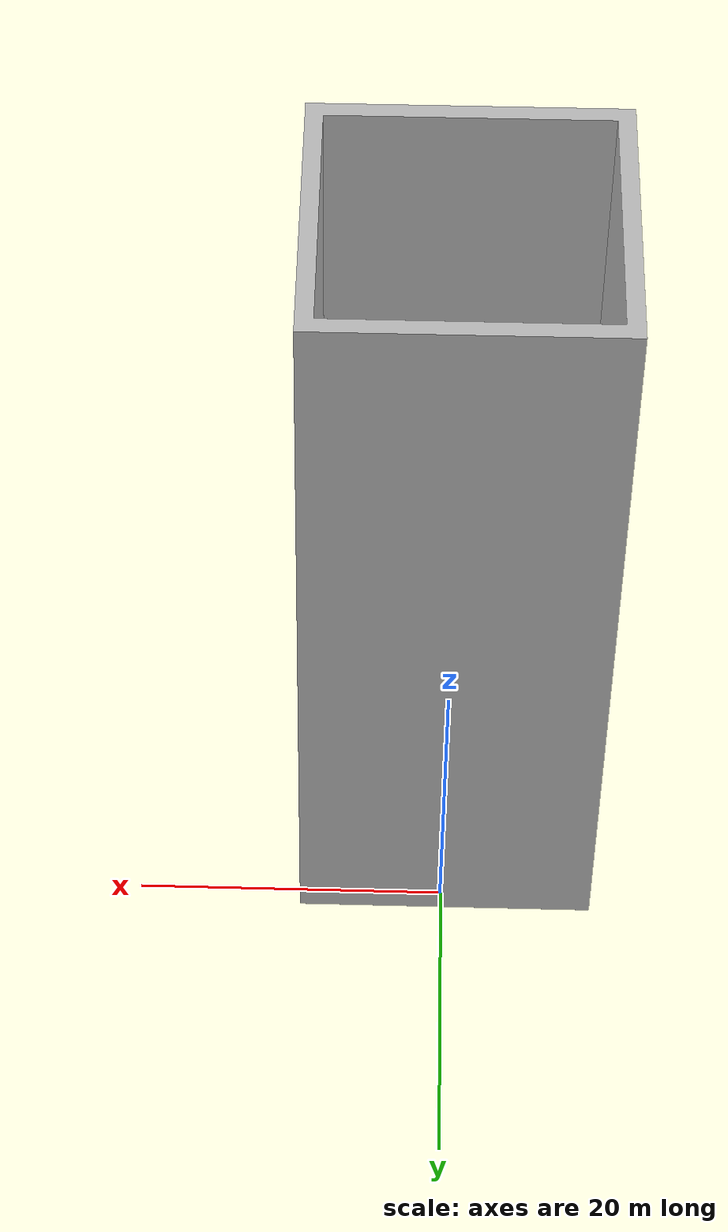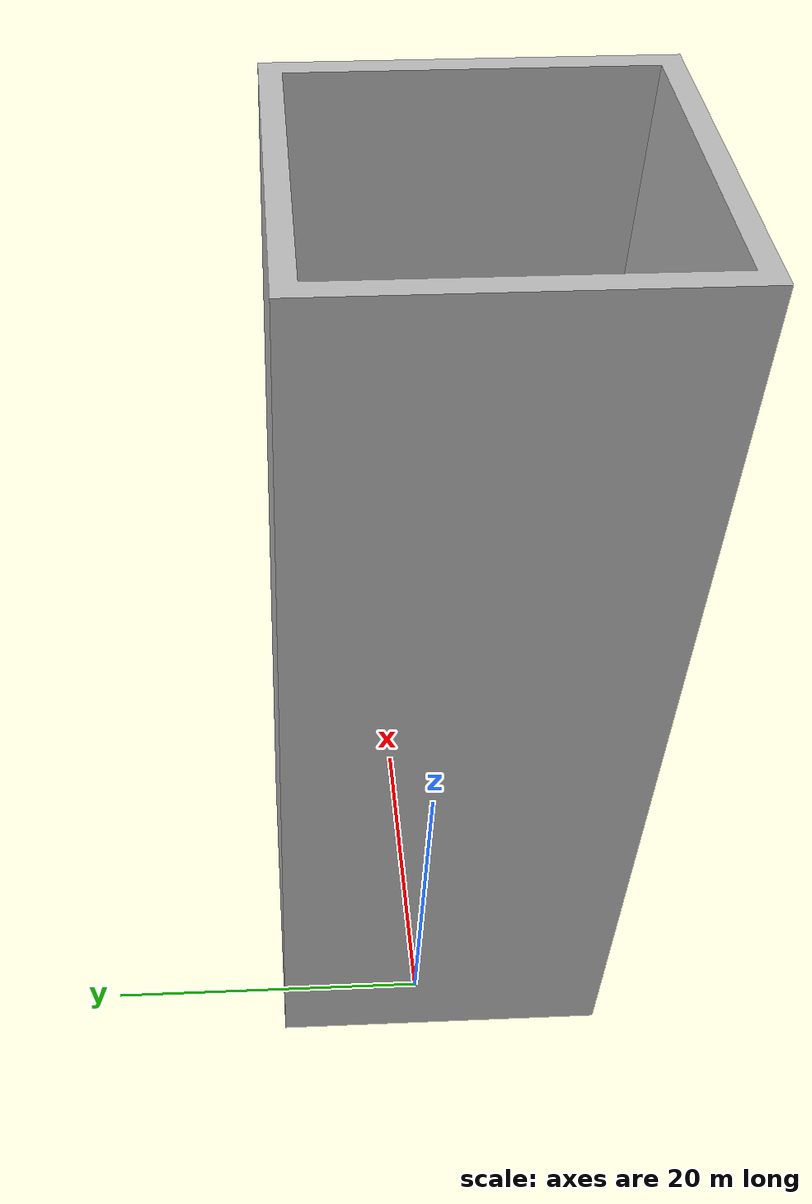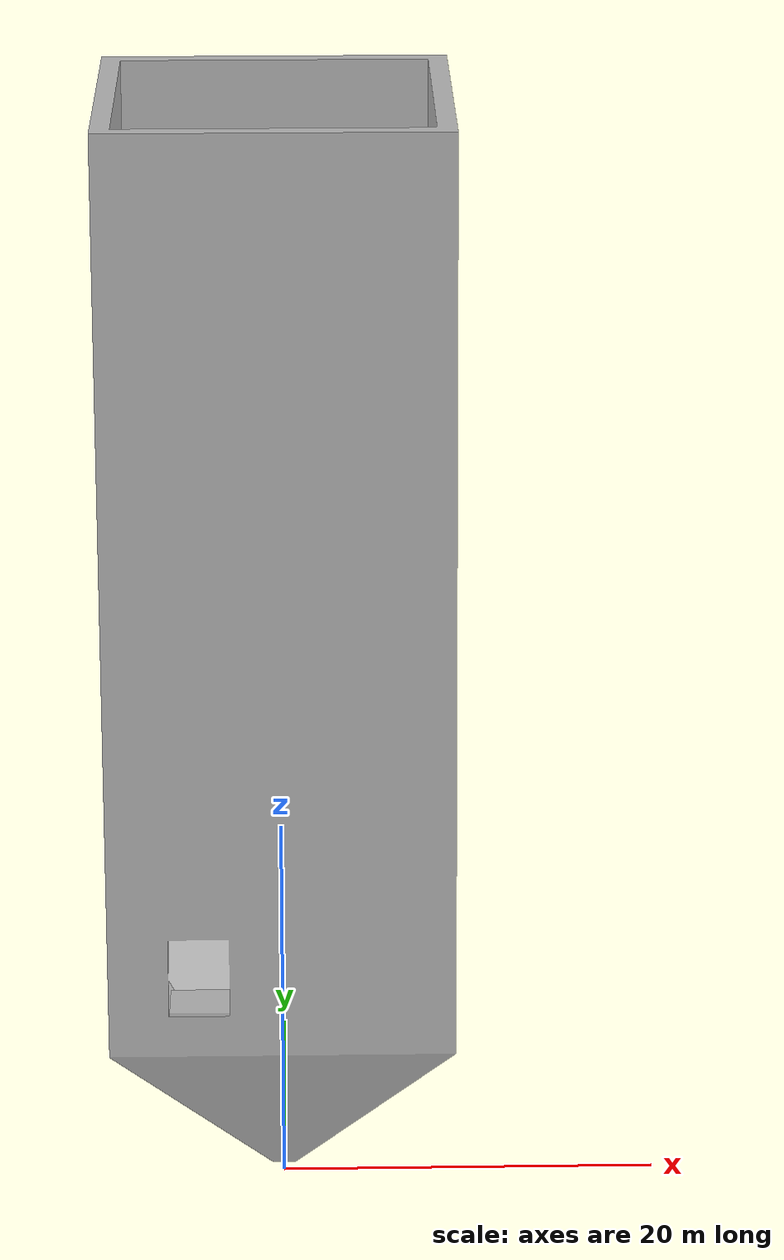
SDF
<?xml version='1.0'?>
<sdf version='1.5'>
  <model name='boiler'>
    <link name='link_1'>
      <pose>0 0 0.71103 0 -0 0</pose>
      <gravity>1</gravity>
      <self_collide>0</self_collide>
      <kinematic>0</kinematic>
      <inertial>
        <mass>1</mass>
        <pose>0 0 0 0 -0 0</pose>
        <inertia>
          <ixx>1</ixx>
          <ixy>0</ixy>
          <ixz>0</ixz>
          <iyy>1</iyy>
          <iyz>0</iyz>
          <izz>1</izz>
        </inertia>
      </inertial>
      <visual name='visual'>
        <pose>0 0 0 0 -0 0</pose>
        <geometry>
          <mesh>
            <uri>model://boiler/meshes/boiler_full.dae</uri>
            <scale>1 1 1</scale>
          </mesh>
        </geometry>
	<material>
          <shader type='pixel'>
            <normal_map>__default__</normal_map>
          </shader>
          <emissive>0.3 0.3 0.3 0</emissive>
        </material>
        <cast_shadows>1</cast_shadows>
        <transparency>0</transparency>
      </visual>
      <collision name='collision'>
        <laser_retro>0</laser_retro>
        <max_contacts>10</max_contacts>
        <pose>0 0 0 0 -0 0</pose>
        <geometry>
          <mesh>
            <uri>model://boiler/meshes/boiler_full.dae</uri>
            <scale>1 1 1</scale>
          </mesh>
        </geometry>
        <surface>
          <friction>
            <ode>
              <mu>1</mu>
              <mu2>1</mu2>
              <fdir1>0 0 0</fdir1>
              <slip1>0</slip1>
              <slip2>0</slip2>
            </ode>
          </friction>
          <bounce>
            <restitution_coefficient>0</restitution_coefficient>
            <threshold>1e+06</threshold>
          </bounce>
          <contact>
            <collide_without_contact>0</collide_without_contact>
            <collide_without_contact_bitmask>1</collide_without_contact_bitmask>
            <collide_bitmask>1</collide_bitmask>
            <ode>
              <soft_cfm>0</soft_cfm>
              <soft_erp>0.2</soft_erp>
              <kp>1e+13</kp>
              <kd>1</kd>
              <max_vel>0.01</max_vel>
              <min_depth>0</min_depth>
            </ode>
            <bullet>
              <split_impulse>1</split_impulse>
              <split_impulse_penetration_threshold>-0.01</split_impulse_penetration_threshold>
              <soft_cfm>0</soft_cfm>
              <soft_erp>0.2</soft_erp>
              <kp>1e+13</kp>
              <kd>1</kd>
            </bullet>
          </contact>
        </surface>
      </collision>
    </link>
    <static>1</static>
    <allow_auto_disable>1</allow_auto_disable>
  </model>
</sdf>
